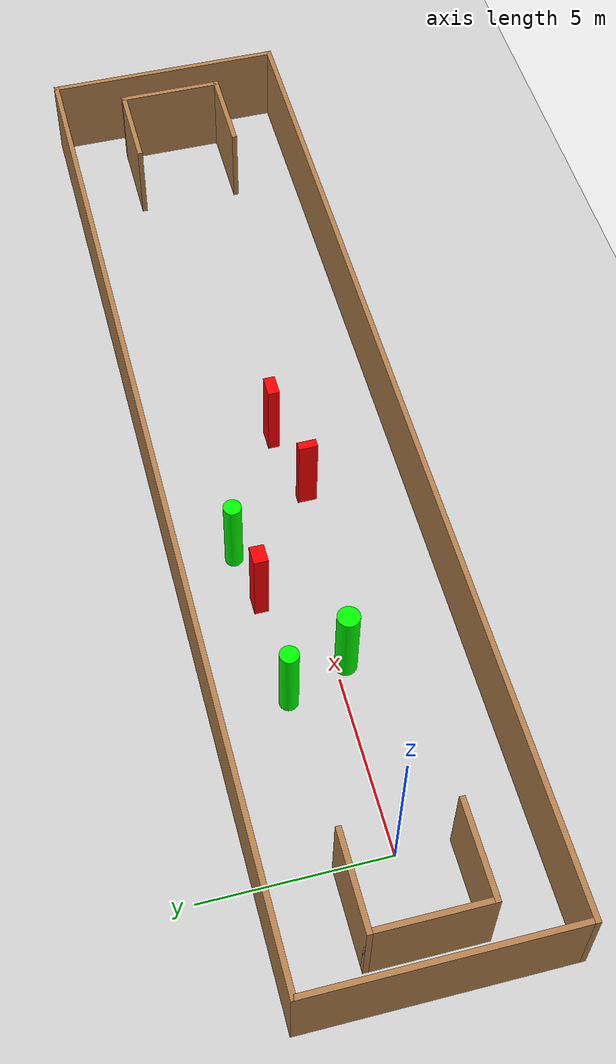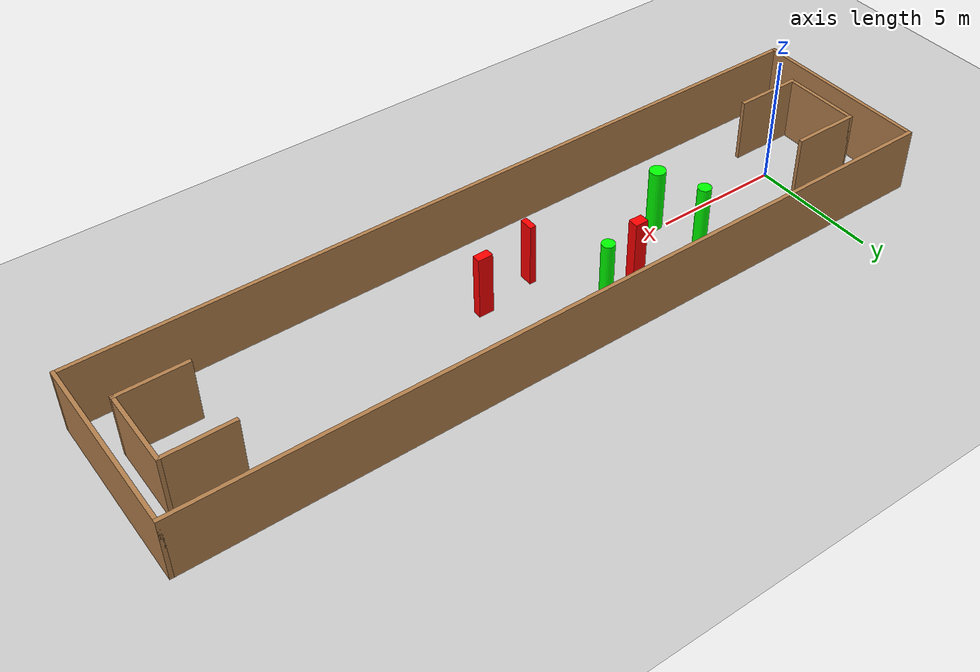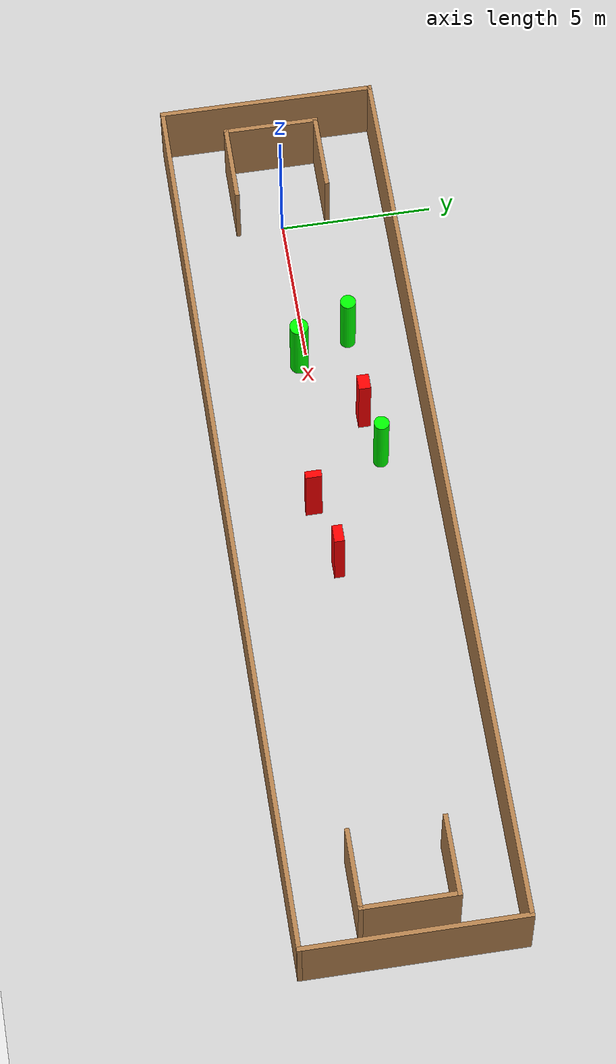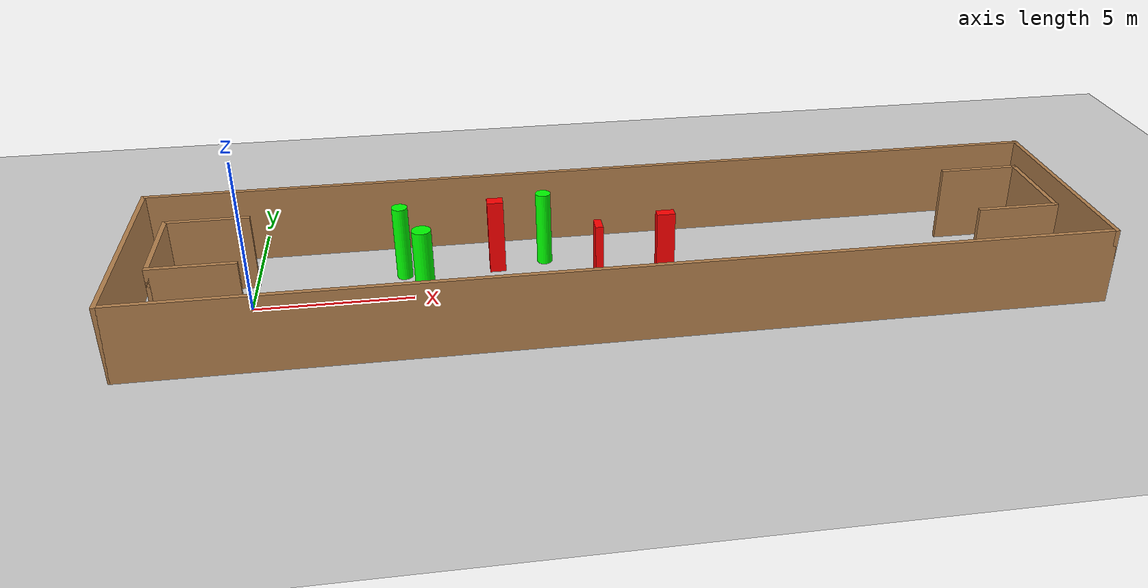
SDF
<sdf version="1.7">
 <world name="default">
  <light name="sun" type="directional">
   <pose>0 0 10 0 -0 0</pose>
   <diffuse>0.8 0.8 0.8 1</diffuse>
   <specular>0.2 0.2 0.2 1</specular>
   <attenuation>
    <range>1000</range>
    <constant>0.9</constant>
    <linear>0.01</linear>
    <quadratic>0.001</quadratic>
   </attenuation>
   <direction>-0.5 0.1 -0.9</direction>
   <spot><inner_angle>0</inner_angle><outer_angle>0</outer_angle><falloff>0</falloff></spot>
  </light>
  <model name="ground_plane">
   <static>1</static>
   <link name="link">
    <collision name="collision">
     <geometry><plane><normal>0 0 1</normal><size>100 100</size></plane></geometry>
     <surface>
      <contact><collide_bitmask>65535</collide_bitmask></contact>
      <friction><ode><mu>100</mu><mu2>50</mu2></ode></friction>
     </surface>
    </collision>
    <visual name="visual">
     <cast_shadows>0</cast_shadows>
     <geometry><plane><normal>0 0 1</normal><size>100 100</size></plane></geometry>
     <material>
      <script><uri>file://media/materials/scripts/gazebo.material</uri><name>Gazebo/Grey</name></script>
     </material>
    </visual>
   </link>
  </model>
  <gravity>0 0 -9.8</gravity>
  <magnetic_field>6e-06 2.3e-05 -4.2e-05</magnetic_field>
  <atmosphere type="adiabatic"/>
  <physics type="ode">
   <max_step_size>0.001</max_step_size>
   <real_time_factor>1</real_time_factor>
   <real_time_update_rate>1000</real_time_update_rate>
  </physics>
  <scene><ambient>0.4 0.4 0.4 1</ambient><background>0.7 0.7 0.7 1</background><shadows>1</shadows></scene>
  <spherical_coordinates>
   <surface_model>EARTH_WGS84</surface_model>
   <latitude_deg>0</latitude_deg>
   <longitude_deg>0</longitude_deg>
   <elevation>0</elevation>
   <heading_deg>0</heading_deg>
  </spherical_coordinates>
  <model name="my_base_walls">
   <link name="Wall_0">
    <collision name="Wall_0_Collision">
     <geometry><box><size>7.15 0.15 2.5</size></box></geometry>
     <pose>0 0 1.25 0 -0 0</pose>
    </collision>
    <visual name="Wall_0_Visual">
     <pose>0 0 1.25 0 -0 0</pose>
     <geometry><box><size>7.15 0.15 2.5</size></box></geometry>
     <material>
      <script><uri>file://media/materials/scripts/gazebo.material</uri><name>Gazebo/Wood</name></script>
      <ambient>1 1 1 1</ambient>
     </material>
     <meta><layer>0</layer></meta>
    </visual>
    <pose>-15 0 0 0 -0 1.5708</pose>
   </link>
   <link name="Wall_10">
    <collision name="Wall_10_Collision">
     <geometry><box><size>2.65 0.15 2.5</size></box></geometry>
     <pose>0 0 1.25 0 -0 0</pose>
    </collision>
    <visual name="Wall_10_Visual">
     <pose>0 0 1.25 0 -0 0</pose>
     <geometry><box><size>2.65 0.15 2.5</size></box></geometry>
     <material>
      <script><uri>file://media/materials/scripts/gazebo.material</uri><name>Gazebo/Wood</name></script>
      <ambient>1 1 1 1</ambient>
     </material>
     <meta><layer>0</layer></meta>
    </visual>
    <pose>-12.75 -1.5 0 0 -0 0</pose>
   </link>
   <link name="Wall_12">
    <collision name="Wall_12_Collision">
     <geometry><box><size>2.65 0.15 2.5</size></box></geometry>
     <pose>0 0 1.25 0 -0 0</pose>
    </collision>
    <visual name="Wall_12_Visual">
     <pose>0 0 1.25 0 -0 0</pose>
     <geometry><box><size>2.65 0.15 2.5</size></box></geometry>
     <material>
      <script><uri>file://media/materials/scripts/gazebo.material</uri><name>Gazebo/Wood</name></script>
      <ambient>1 1 1 1</ambient>
     </material>
     <meta><layer>0</layer></meta>
    </visual>
    <pose>-12.75 1.5 0 0 -0 0</pose>
   </link>
   <link name="Wall_14">
    <collision name="Wall_14_Collision">
     <geometry><box><size>3.15 0.15 2.5</size></box></geometry>
     <pose>0 0 1.25 0 -0 0</pose>
    </collision>
    <visual name="Wall_14_Visual">
     <pose>0 0 1.25 0 -0 0</pose>
     <geometry><box><size>3.15 0.15 2.5</size></box></geometry>
     <material>
      <script><uri>file://media/materials/scripts/gazebo.material</uri><name>Gazebo/Wood</name></script>
      <ambient>1 1 1 1</ambient>
     </material>
     <meta><layer>0</layer></meta>
    </visual>
    <pose>14 0 0 0 -0 -1.5708</pose>
   </link>
   <link name="Wall_15">
    <collision name="Wall_15_Collision">
     <geometry><box><size>2.65 0.15 2.5</size></box></geometry>
     <pose>0 0 1.25 0 -0 0</pose>
    </collision>
    <visual name="Wall_15_Visual">
     <pose>0 0 1.25 0 -0 0</pose>
     <geometry><box><size>2.65 0.15 2.5</size></box></geometry>
     <material>
      <script><uri>file://media/materials/scripts/gazebo.material</uri><name>Gazebo/Wood</name></script>
      <ambient>1 1 1 1</ambient>
     </material>
     <meta><layer>0</layer></meta>
    </visual>
    <pose>12.75 -1.5 0 0 -0 3.14159</pose>
   </link>
   <link name="Wall_17">
    <collision name="Wall_17_Collision">
     <geometry><box><size>2.65 0.15 2.5</size></box></geometry>
     <pose>0 0 1.25 0 -0 0</pose>
    </collision>
    <visual name="Wall_17_Visual">
     <pose>0 0 1.25 0 -0 0</pose>
     <geometry><box><size>2.65 0.15 2.5</size></box></geometry>
     <material>
      <script><uri>file://media/materials/scripts/gazebo.material</uri><name>Gazebo/Wood</name></script>
      <ambient>1 1 1 1</ambient>
     </material>
     <meta><layer>0</layer></meta>
    </visual>
    <pose>12.75 1.5 0 0 -0 3.14159</pose>
   </link>
   <link name="Wall_2">
    <collision name="Wall_2_Collision">
     <geometry><box><size>30.15 0.15 2.5</size></box></geometry>
     <pose>0 0 1.25 0 -0 0</pose>
    </collision>
    <visual name="Wall_2_Visual">
     <pose>0 0 1.25 0 -0 0</pose>
     <geometry><box><size>30.15 0.15 2.5</size></box></geometry>
     <material>
      <script><uri>file://media/materials/scripts/gazebo.material</uri><name>Gazebo/Wood</name></script>
      <ambient>1 1 1 1</ambient>
     </material>
     <meta><layer>0</layer></meta>
    </visual>
    <pose>-0 -3.5 0 0 -0 0</pose>
   </link>
   <link name="Wall_4">
    <collision name="Wall_4_Collision">
     <geometry><box><size>30.15 0.15 2.5</size></box></geometry>
     <pose>0 0 1.25 0 -0 0</pose>
    </collision>
    <visual name="Wall_4_Visual">
     <pose>0 0 1.25 0 -0 0</pose>
     <geometry><box><size>30.15 0.15 2.5</size></box></geometry>
     <material>
      <script><uri>file://media/materials/scripts/gazebo.material</uri><name>Gazebo/Wood</name></script>
      <ambient>1 1 1 1</ambient>
     </material>
     <meta><layer>0</layer></meta>
    </visual>
    <pose>-0 3.5 0 0 -0 0</pose>
   </link>
   <link name="Wall_6">
    <collision name="Wall_6_Collision">
     <geometry><box><size>7.15 0.15 2.5</size></box></geometry>
     <pose>0 0 1.25 0 -0 0</pose>
    </collision>
    <visual name="Wall_6_Visual">
     <pose>0 0 1.25 0 -0 0</pose>
     <geometry><box><size>7.15 0.15 2.5</size></box></geometry>
     <material>
      <script><uri>file://media/materials/scripts/gazebo.material</uri><name>Gazebo/Wood</name></script>
      <ambient>1 1 1 1</ambient>
     </material>
     <meta><layer>0</layer></meta>
    </visual>
    <pose>15 0 0 0 -0 -1.5708</pose>
   </link>
   <link name="Wall_9">
    <collision name="Wall_9_Collision">
     <geometry><box><size>3.15 0.15 2.5</size></box></geometry>
     <pose>0 0 1.25 0 -0 0</pose>
    </collision>
    <visual name="Wall_9_Visual">
     <pose>0 0 1.25 0 -0 0</pose>
     <geometry><box><size>3.15 0.15 2.5</size></box></geometry>
     <material>
      <script><uri>file://media/materials/scripts/gazebo.material</uri><name>Gazebo/Wood</name></script>
      <ambient>1 1 1 1</ambient>
     </material>
     <meta><layer>0</layer></meta>
    </visual>
    <pose>-14 0 0 0 -0 -1.5708</pose>
   </link>
   <static>1</static>
   <pose>11.5 0 0 0 -0 0</pose>
  </model>
  <model name="cylinder1">
   <static>1</static>
   <link name="link">
    <inertial>
     <mass>1</mass>
     <inertia><ixx>0.5</ixx><ixy>0</ixy><ixz>0</ixz><iyy>0.5</iyy><iyz>0</iyz><izz>1</izz></inertia>
    </inertial>
    <collision name="collision">
     <geometry><cylinder><radius>0.25418230337608494</radius><length>2.5</length></cylinder></geometry>
    </collision>
    <visual name="visual">
     <geometry><cylinder><radius>0.25418230337608494</radius><length>2.5</length></cylinder></geometry>
     <material>
      <ambient>0 1 0 1</ambient>
      <diffuse>0 1 0 1</diffuse>
      <specular>0.1 0.1 0.1 1</specular>
      <emissive>0 0 0 0</emissive>
     </material>
    </visual>
   </link>
   <pose>4.702251057161536 1.459103611363128 1.25 0 0 0</pose>
  </model>
  <model name="cylinder2">
   <static>1</static>
   <link name="link">
    <inertial>
     <mass>1</mass>
     <inertia><ixx>0.5</ixx><ixy>0</ixy><ixz>0</ixz><iyy>0.5</iyy><iyz>0</iyz><izz>1</izz></inertia>
    </inertial>
    <collision name="collision">
     <geometry><cylinder><radius>0.24652933380787978</radius><length>2.5</length></cylinder></geometry>
    </collision>
    <visual name="visual">
     <geometry><cylinder><radius>0.24652933380787978</radius><length>2.5</length></cylinder></geometry>
     <material>
      <ambient>0 1 0 1</ambient>
      <diffuse>0 1 0 1</diffuse>
      <specular>0.1 0.1 0.1 1</specular>
      <emissive>0 0 0 0</emissive>
     </material>
    </visual>
   </link>
   <pose>9.325656196449128 1.8060468236130554 1.25 0 0 0</pose>
  </model>
  <model name="cylinder3">
   <static>1</static>
   <link name="link">
    <inertial>
     <mass>1</mass>
     <inertia><ixx>0.5</ixx><ixy>0</ixy><ixz>0</ixz><iyy>0.5</iyy><iyz>0</iyz><izz>1</izz></inertia>
    </inertial>
    <collision name="collision">
     <geometry><cylinder><radius>0.30479962452971887</radius><length>2.5</length></cylinder></geometry>
    </collision>
    <visual name="visual">
     <geometry><cylinder><radius>0.30479962452971887</radius><length>2.5</length></cylinder></geometry>
     <material>
      <ambient>0 1 0 1</ambient>
      <diffuse>0 1 0 1</diffuse>
      <specular>0.1 0.1 0.1 1</specular>
      <emissive>0 0 0 0</emissive>
     </material>
    </visual>
   </link>
   <pose>5.377119667600622 -0.25547984068317797 1.25 0 0 0</pose>
  </model>
  <model name="box1">
   <static>1</static>
   <link name="link">
    <inertial>
     <mass>1</mass>
     <inertia><ixx>0.083</ixx><ixy>0</ixy><ixz>0</ixz><iyy>0.083</iyy><iyz>0</iyz><izz>0.083</izz></inertia>
    </inertial>
    <collision name="collision">
     <geometry><box><size>0.5186911801576628 0.3951055029043853 2.5</size></box></geometry>
    </collision>
    <visual name="visual">
     <geometry><box><size>0.5186911801576628 0.3951055029043853 2.5</size></box></geometry>
     <material>
      <ambient>1 0 0 1</ambient>
      <diffuse>1 0 0 1</diffuse>
      <specular>0.1 0.1 0.1 1</specular>
      <emissive>0 0 0 0</emissive>
     </material>
    </visual>
    <sensor name="my_contact" type="contact">
     <contact><collision>box_collision</collision><topic>__default_topic__</topic></contact>
    </sensor>
   </link>
   <pose>7.736856259038264 1.4857192971531354 1.25 0 0 0</pose>
  </model>
  <model name="box2">
   <static>1</static>
   <link name="link">
    <inertial>
     <mass>1</mass>
     <inertia><ixx>0.083</ixx><ixy>0</ixy><ixz>0</ixz><iyy>0.083</iyy><iyz>0</iyz><izz>0.083</izz></inertia>
    </inertial>
    <collision name="collision">
     <geometry><box><size>0.24316241282253415 0.5329191648627618 2.5</size></box></geometry>
    </collision>
    <visual name="visual">
     <geometry><box><size>0.24316241282253415 0.5329191648627618 2.5</size></box></geometry>
     <material>
      <ambient>1 0 0 1</ambient>
      <diffuse>1 0 0 1</diffuse>
      <specular>0.1 0.1 0.1 1</specular>
      <emissive>0 0 0 0</emissive>
     </material>
    </visual>
    <sensor name="my_contact" type="contact">
     <contact><collision>box_collision</collision><topic>__default_topic__</topic></contact>
    </sensor>
   </link>
   <pose>10.815109983369439 -0.6302757569787785 1.25 0 0 0</pose>
  </model>
  <model name="box3">
   <static>1</static>
   <link name="link">
    <inertial>
     <mass>1</mass>
     <inertia><ixx>0.083</ixx><ixy>0</ixy><ixz>0</ixz><iyy>0.083</iyy><iyz>0</iyz><izz>0.083</izz></inertia>
    </inertial>
    <collision name="collision">
     <geometry><box><size>0.5825708198311826 0.3263990447779701 2.5</size></box></geometry>
    </collision>
    <visual name="visual">
     <geometry><box><size>0.5825708198311826 0.3263990447779701 2.5</size></box></geometry>
     <material>
      <ambient>1 0 0 1</ambient>
      <diffuse>1 0 0 1</diffuse>
      <specular>0.1 0.1 0.1 1</specular>
      <emissive>0 0 0 0</emissive>
     </material>
    </visual>
    <sensor name="my_contact" type="contact">
     <contact><collision>box_collision</collision><topic>__default_topic__</topic></contact>
    </sensor>
   </link>
   <pose>13.023657830710208 -0.18382809656823884 1.25 0 0 0</pose>
  </model>
 </world>
</sdf>
